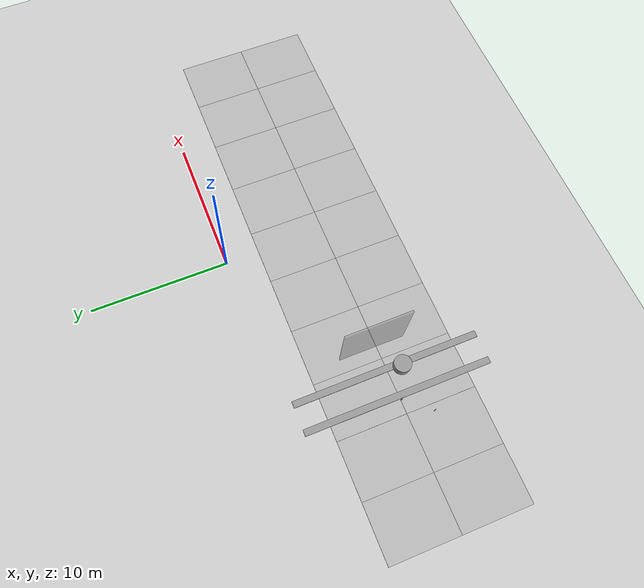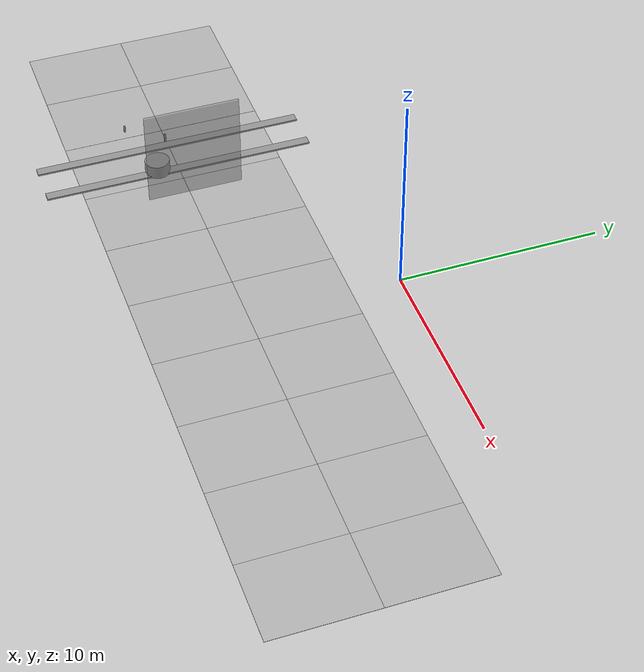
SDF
<sdf version="1.6">
 <world name="default">
  <model name="ground_plane">
   <static>1</static>
   <link name="link">
    <collision name="collision">
     <geometry><plane><normal>0 0 1</normal><size>100 100</size></plane></geometry>
     <surface>
      <contact><collide_bitmask>65535</collide_bitmask></contact>
      <friction><ode><mu>100</mu><mu2>50</mu2></ode></friction>
     </surface>
    </collision>
    <visual name="visual">
     <cast_shadows>0</cast_shadows>
     <geometry><plane><normal>0 0 1</normal><size>100 100</size></plane></geometry>
     <material>
      <script><uri>file://media/materials/scripts/gazebo.material</uri><name>Gazebo/Grey</name></script>
     </material>
    </visual>
   </link>
  </model>
  <model name="Box_24x15W_0_clone">
   <link name="Wall">
    <pose>0 0 0.1985 0 -0 0</pose>
    <inertial>
     <mass>5</mass>
     <inertia><ixx>0.1022</ixx><iyy>0.2197</iyy><izz>0.1905</izz><ixy>0</ixy><ixz>0</ixz><iyz>0</iyz></inertia>
    </inertial>
    <collision name="Wall_Collision">
     <geometry><box><size>0.470639 13.5 0.091294</size></box></geometry>
    </collision>
    <visual name="Wall_Visual">
     <geometry><box><size>0.470639 13.5 0.091294</size></box></geometry>
     <material>
      <script><uri>file://media/materials/scripts/gazebo.material</uri><name>Gazebo/Grey</name></script>
      <ambient>1 1 1 1</ambient>
     </material>
    </visual>
   </link>
   <static>1</static>
   <pose>-13.1875 -7.42472 -0.140264 0 -0 0</pose>
  </model>
  <model name="Box_24x15W_0_clone_clone">
   <link name="Wall">
    <pose>0 0 0.1985 0 -0 0</pose>
    <inertial>
     <mass>5</mass>
     <inertia><ixx>0.1022</ixx><iyy>0.2197</iyy><izz>0.1905</izz><ixy>0</ixy><ixz>0</ixz><iyz>0</iyz></inertia>
    </inertial>
    <collision name="Wall_Collision">
     <geometry><box><size>0.470639 13.5 0.091294</size></box></geometry>
    </collision>
    <visual name="Wall_Visual">
     <geometry><box><size>0.470639 13.5 0.091294</size></box></geometry>
     <material>
      <script><uri>file://media/materials/scripts/gazebo.material</uri><name>Gazebo/Grey</name></script>
      <ambient>1 1 1 1</ambient>
     </material>
    </visual>
   </link>
   <static>1</static>
   <pose>-11.214 -7.42472 -0.140264 0 -0 0</pose>
  </model>
  <model name="Ground_Soil_0">
   <model name="mud_box">
    <static>1</static>
    <link name="link">
     <collision name="collision"><geometry><box><size>8 10 0.02</size></box></geometry></collision>
     <visual name="visual_1">
      <pose>-2 2.5 0 0 -0 0</pose>
      <cast_shadows>0</cast_shadows>
      <geometry><box><size>4 5 0.02</size></box></geometry>
      <material>
       <script>
        <uri>model://mud_box/materials/scripts</uri>
        <uri>model://mud_box/materials/textures</uri>
        <name>vrc/mud</name>
       </script>
      </material>
     </visual>
     <visual name="visual_2">
      <pose>2 2.5 0 0 -0 0</pose>
      <cast_shadows>0</cast_shadows>
      <geometry><box><size>4 5 0.02</size></box></geometry>
      <material>
       <script>
        <uri>model://mud_box/materials/scripts</uri>
        <uri>model://mud_box/materials/textures</uri>
        <name>vrc/mud</name>
       </script>
      </material>
     </visual>
     <visual name="visual_3">
      <pose>2 -2.5 0 0 -0 0</pose>
      <cast_shadows>0</cast_shadows>
      <geometry><box><size>4 5 0.02</size></box></geometry>
      <material>
       <script>
        <uri>model://mud_box/materials/scripts</uri>
        <uri>model://mud_box/materials/textures</uri>
        <name>vrc/mud</name>
       </script>
      </material>
     </visual>
     <visual name="visual_4">
      <pose>-2 -2.5 0 0 -0 0</pose>
      <cast_shadows>0</cast_shadows>
      <geometry><box><size>4 5 0.02</size></box></geometry>
      <material>
       <script>
        <uri>model://mud_box/materials/scripts</uri>
        <uri>model://mud_box/materials/textures</uri>
        <name>vrc/mud</name>
       </script>
      </material>
     </visual>
    </link>
    <pose>-16.0013 0.000118 0 0 -0 0</pose>
   </model>
   <model name="mud_box_0">
    <static>1</static>
    <link name="link">
     <collision name="collision"><geometry><box><size>8 10 0.02</size></box></geometry></collision>
     <visual name="visual_1">
      <pose>-2 2.5 0 0 -0 0</pose>
      <cast_shadows>0</cast_shadows>
      <geometry><box><size>4 5 0.02</size></box></geometry>
      <material>
       <script>
        <uri>model://mud_box/materials/scripts</uri>
        <uri>model://mud_box/materials/textures</uri>
        <name>vrc/mud</name>
       </script>
      </material>
     </visual>
     <visual name="visual_2">
      <pose>2 2.5 0 0 -0 0</pose>
      <cast_shadows>0</cast_shadows>
      <geometry><box><size>4 5 0.02</size></box></geometry>
      <material>
       <script>
        <uri>model://mud_box/materials/scripts</uri>
        <uri>model://mud_box/materials/textures</uri>
        <name>vrc/mud</name>
       </script>
      </material>
     </visual>
     <visual name="visual_3">
      <pose>2 -2.5 0 0 -0 0</pose>
      <cast_shadows>0</cast_shadows>
      <geometry><box><size>4 5 0.02</size></box></geometry>
      <material>
       <script>
        <uri>model://mud_box/materials/scripts</uri>
        <uri>model://mud_box/materials/textures</uri>
        <name>vrc/mud</name>
       </script>
      </material>
     </visual>
     <visual name="visual_4">
      <pose>-2 -2.5 0 0 -0 0</pose>
      <cast_shadows>0</cast_shadows>
      <geometry><box><size>4 5 0.02</size></box></geometry>
      <material>
       <script>
        <uri>model://mud_box/materials/scripts</uri>
        <uri>model://mud_box/materials/textures</uri>
        <name>vrc/mud</name>
       </script>
      </material>
     </visual>
    </link>
    <pose>-7.99939 9.1e-05 0 0 -0 0</pose>
   </model>
   <model name="mud_box_1">
    <static>1</static>
    <link name="link">
     <collision name="collision"><geometry><box><size>8 10 0.02</size></box></geometry></collision>
     <visual name="visual_1">
      <pose>-2 2.5 0 0 -0 0</pose>
      <cast_shadows>0</cast_shadows>
      <geometry><box><size>4 5 0.02</size></box></geometry>
      <material>
       <script>
        <uri>model://mud_box/materials/scripts</uri>
        <uri>model://mud_box/materials/textures</uri>
        <name>vrc/mud</name>
       </script>
      </material>
     </visual>
     <visual name="visual_2">
      <pose>2 2.5 0 0 -0 0</pose>
      <cast_shadows>0</cast_shadows>
      <geometry><box><size>4 5 0.02</size></box></geometry>
      <material>
       <script>
        <uri>model://mud_box/materials/scripts</uri>
        <uri>model://mud_box/materials/textures</uri>
        <name>vrc/mud</name>
       </script>
      </material>
     </visual>
     <visual name="visual_3">
      <pose>2 -2.5 0 0 -0 0</pose>
      <cast_shadows>0</cast_shadows>
      <geometry><box><size>4 5 0.02</size></box></geometry>
      <material>
       <script>
        <uri>model://mud_box/materials/scripts</uri>
        <uri>model://mud_box/materials/textures</uri>
        <name>vrc/mud</name>
       </script>
      </material>
     </visual>
     <visual name="visual_4">
      <pose>-2 -2.5 0 0 -0 0</pose>
      <cast_shadows>0</cast_shadows>
      <geometry><box><size>4 5 0.02</size></box></geometry>
      <material>
       <script>
        <uri>model://mud_box/materials/scripts</uri>
        <uri>model://mud_box/materials/textures</uri>
        <name>vrc/mud</name>
       </script>
      </material>
     </visual>
    </link>
    <pose>0.000809 -0.000342 0 0 -0 0</pose>
   </model>
   <model name="mud_box_2">
    <static>1</static>
    <link name="link">
     <collision name="collision"><geometry><box><size>8 10 0.02</size></box></geometry></collision>
     <visual name="visual_1">
      <pose>-2 2.5 0 0 -0 0</pose>
      <cast_shadows>0</cast_shadows>
      <geometry><box><size>4 5 0.02</size></box></geometry>
      <material>
       <script>
        <uri>model://mud_box/materials/scripts</uri>
        <uri>model://mud_box/materials/textures</uri>
        <name>vrc/mud</name>
       </script>
      </material>
     </visual>
     <visual name="visual_2">
      <pose>2 2.5 0 0 -0 0</pose>
      <cast_shadows>0</cast_shadows>
      <geometry><box><size>4 5 0.02</size></box></geometry>
      <material>
       <script>
        <uri>model://mud_box/materials/scripts</uri>
        <uri>model://mud_box/materials/textures</uri>
        <name>vrc/mud</name>
       </script>
      </material>
     </visual>
     <visual name="visual_3">
      <pose>2 -2.5 0 0 -0 0</pose>
      <cast_shadows>0</cast_shadows>
      <geometry><box><size>4 5 0.02</size></box></geometry>
      <material>
       <script>
        <uri>model://mud_box/materials/scripts</uri>
        <uri>model://mud_box/materials/textures</uri>
        <name>vrc/mud</name>
       </script>
      </material>
     </visual>
     <visual name="visual_4">
      <pose>-2 -2.5 0 0 -0 0</pose>
      <cast_shadows>0</cast_shadows>
      <geometry><box><size>4 5 0.02</size></box></geometry>
      <material>
       <script>
        <uri>model://mud_box/materials/scripts</uri>
        <uri>model://mud_box/materials/textures</uri>
        <name>vrc/mud</name>
       </script>
      </material>
     </visual>
    </link>
    <pose>8.00089 -0.000148 0 0 -0 0</pose>
   </model>
   <model name="mud_box_3">
    <static>1</static>
    <link name="link">
     <collision name="collision"><geometry><box><size>8 10 0.02</size></box></geometry></collision>
     <visual name="visual_1">
      <pose>-2 2.5 0 0 -0 0</pose>
      <cast_shadows>0</cast_shadows>
      <geometry><box><size>4 5 0.02</size></box></geometry>
      <material>
       <script>
        <uri>model://mud_box/materials/scripts</uri>
        <uri>model://mud_box/materials/textures</uri>
        <name>vrc/mud</name>
       </script>
      </material>
     </visual>
     <visual name="visual_2">
      <pose>2 2.5 0 0 -0 0</pose>
      <cast_shadows>0</cast_shadows>
      <geometry><box><size>4 5 0.02</size></box></geometry>
      <material>
       <script>
        <uri>model://mud_box/materials/scripts</uri>
        <uri>model://mud_box/materials/textures</uri>
        <name>vrc/mud</name>
       </script>
      </material>
     </visual>
     <visual name="visual_3">
      <pose>2 -2.5 0 0 -0 0</pose>
      <cast_shadows>0</cast_shadows>
      <geometry><box><size>4 5 0.02</size></box></geometry>
      <material>
       <script>
        <uri>model://mud_box/materials/scripts</uri>
        <uri>model://mud_box/materials/textures</uri>
        <name>vrc/mud</name>
       </script>
      </material>
     </visual>
     <visual name="visual_4">
      <pose>-2 -2.5 0 0 -0 0</pose>
      <cast_shadows>0</cast_shadows>
      <geometry><box><size>4 5 0.02</size></box></geometry>
      <material>
       <script>
        <uri>model://mud_box/materials/scripts</uri>
        <uri>model://mud_box/materials/textures</uri>
        <name>vrc/mud</name>
       </script>
      </material>
     </visual>
    </link>
    <pose>15.9991 0.000313 0 0 -0 0</pose>
   </model>
   <static>0</static>
   <pose>-2.4586 -7.4396 0 0 -0 0</pose>
  </model>
  <model name="wall_0_clone_2">
   <link name="link">
    <inertial>
     <mass>2.87883</mass>
     <inertia><ixx>11.0771</ixx><ixy>0</ixy><ixz>0</ixz><iyy>5.80298</iyy><iyz>0</iyz><izz>5.28163</izz></inertia>
    </inertial>
    <pose>0 -0.040293 1.94803 0 -0 0</pose>
    <visual name="visual">
     <geometry><box><size>0.12484 4.69043 4.91663</size></box></geometry>
     <material>
      <script><name>Gazebo/Grey</name><uri>file://media/materials/scripts/gazebo.material</uri></script>
      <ambient>0.3 0.3 0.3 1</ambient>
      <diffuse>0.7 0.7 0.7 1</diffuse>
      <specular>0.01 0.01 0.01 1</specular>
      <emissive>0 0 0 1</emissive>
      <shader type="vertex"><normal_map>__default__</normal_map></shader>
     </material>
     <transparency>0.5</transparency>
    </visual>
    <collision name="collision">
     <geometry><box><size>0.12484 4.69043 4.91663</size></box></geometry>
     <surface>
      <friction>
       <ode><mu>1</mu><mu2>1</mu2><fdir1>0 0 0</fdir1><slip1>0</slip1><slip2>0</slip2></ode>
       <torsional>
        <coefficient>1</coefficient>
        <patch_radius>0</patch_radius>
        <surface_radius>0</surface_radius>
        <use_patch_radius>1</use_patch_radius>
        <ode><slip>0</slip></ode>
       </torsional>
      </friction>
      <bounce><restitution_coefficient>0</restitution_coefficient><threshold>1e+06</threshold></bounce>
      <contact>
       <collide_without_contact>0</collide_without_contact>
       <collide_without_contact_bitmask>1</collide_without_contact_bitmask>
       <collide_bitmask>1</collide_bitmask>
       <ode>
        <soft_cfm>0</soft_cfm>
        <soft_erp>0.2</soft_erp>
        <kp>1e+13</kp>
        <kd>1</kd>
        <max_vel>0.01</max_vel>
        <min_depth>0</min_depth>
       </ode>
       <bullet>
        <split_impulse>1</split_impulse>
        <split_impulse_penetration_threshold>-0.01</split_impulse_penetration_threshold>
        <soft_cfm>0</soft_cfm>
        <soft_erp>0.2</soft_erp>
        <kp>1e+13</kp>
        <kd>1</kd>
       </bullet>
      </contact>
     </surface>
    </collision>
   </link>
   <static>0</static>
   <pose>-9.46593 -7.06969 0.520285 0 1e-06 1.9e-05</pose>
  </model>
  <model name="unit_cylinder_clone_1">
   <pose>-11.4156 -8.4845 0.361178 1.6e-05 -1.3e-05 0.002261</pose>
   <link name="link">
    <inertial>
     <mass>1</mass>
     <inertia><ixx>0.145833</ixx><ixy>0</ixy><ixz>0</ixz><iyy>0.145833</iyy><iyz>0</iyz><izz>0.125</izz></inertia>
    </inertial>
    <collision name="collision">
     <geometry><cylinder><radius>0.61609</radius><length>0.67557</length></cylinder></geometry>
    </collision>
    <visual name="visual">
     <geometry><cylinder><radius>0.61609</radius><length>0.67557</length></cylinder></geometry>
     <material>
      <script><name>Gazebo/Grey</name><uri>file://media/materials/scripts/gazebo.material</uri></script>
     </material>
    </visual>
   </link>
  </model>
  <model name="unit_box_clone_0_clone">
   <pose>-14.9447 -9.22011 0.220146 0 1e-05 1.55257</pose>
   <link name="link">
    <inertial>
     <mass>1</mass>
     <inertia>
      <ixx>0.166667</ixx>
      <ixy>0</ixy>
      <ixz>0</ixz>
      <iyy>0.166667</iyy>
      <iyz>0</iyz>
      <izz>0.166667</izz>
     </inertia>
    </inertial>
    <collision name="collision">
     <geometry><box><size>0.0954381 0.023385 0.420297</size></box></geometry>
    </collision>
    <visual name="visual">
     <geometry><box><size>0.0954381 0.023385 0.420297</size></box></geometry>
     <material>
      <script><name>Gazebo/Grey</name><uri>file://media/materials/scripts/gazebo.material</uri></script>
     </material>
    </visual>
   </link>
  </model>
  <model name="unit_box_0_clone">
   <pose>-13.4974 -7.50338 0.280413 -0 2e-06 0.49285</pose>
   <link name="link">
    <inertial>
     <mass>1</mass>
     <inertia>
      <ixx>0.166667</ixx>
      <ixy>0</ixy>
      <ixz>0</ixz>
      <iyy>0.166667</iyy>
      <iyz>0</iyz>
      <izz>0.166667</izz>
     </inertia>
    </inertial>
    <collision name="collision">
     <geometry><box><size>0.067401 0.0897238 0.485983</size></box></geometry>
    </collision>
    <visual name="visual">
     <geometry><box><size>0.067401 0.0897238 0.485983</size></box></geometry>
     <material>
      <script><name>Gazebo/Grey</name><uri>file://media/materials/scripts/gazebo.material</uri></script>
     </material>
    </visual>
   </link>
  </model>
 </world>
</sdf>
